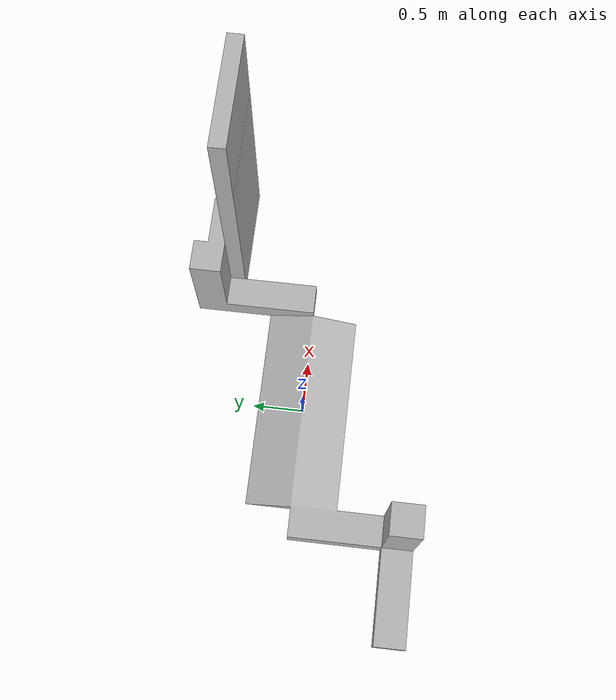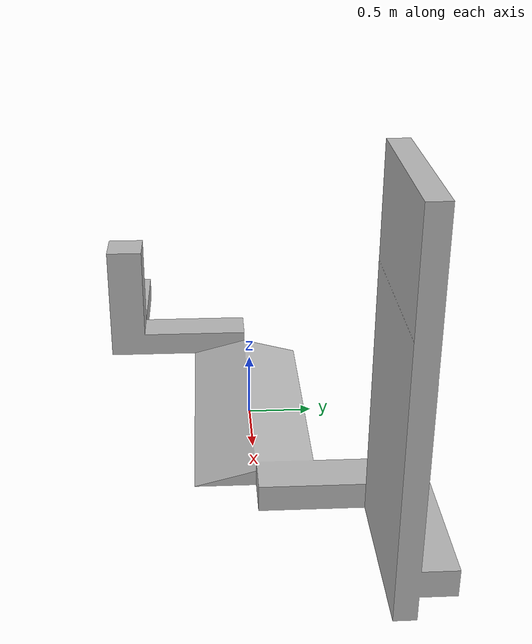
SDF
<?xml version='1.0'?>
<sdf version="1.4">
<model name="room1">
  <static>true</static>
  <pose>0 0 0 0 0 0</pose>
    <link name="link">
      <inertial>
        <mass>1.0</mass>
        <inertia>
          <ixx>0.083</ixx>
          <ixy>0.0</ixy>
          <ixz>0.0</ixz>
          <iyy>0.083</iyy>
          <iyz>0.0</iyz>
          <izz>0.083</izz>
        </inertia>
      </inertial>
      <collision name="collision">
        <geometry>
          <mesh>
            <uri>model://room1/asm_field.stl</uri>
          </mesh>
        </geometry>
      </collision>
      <visual name="visual">
        <geometry>
          <mesh>
            <uri>model://room1/asm_field.stl</uri>
          </mesh>
        </geometry>
      </visual>
    </link>
  </model>
</sdf>
